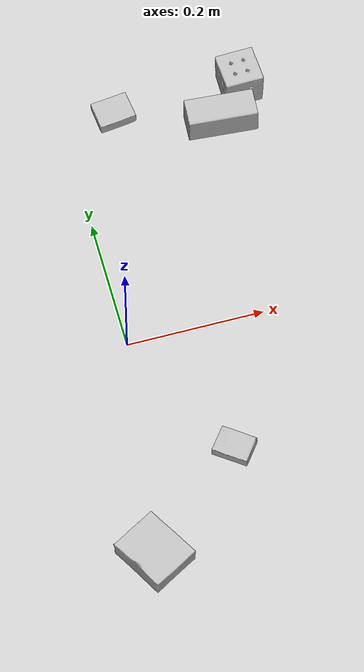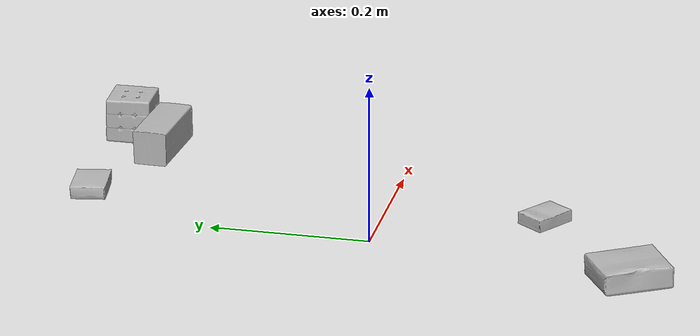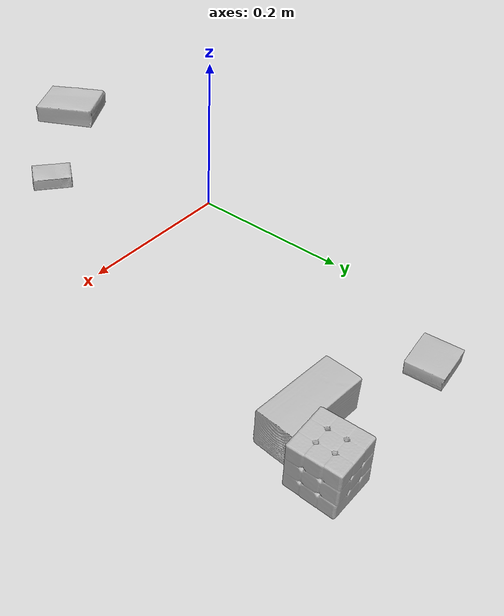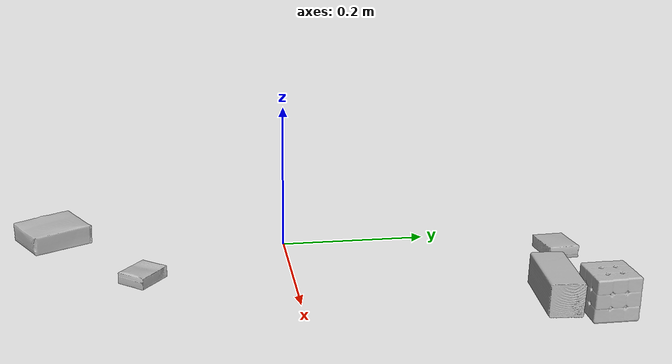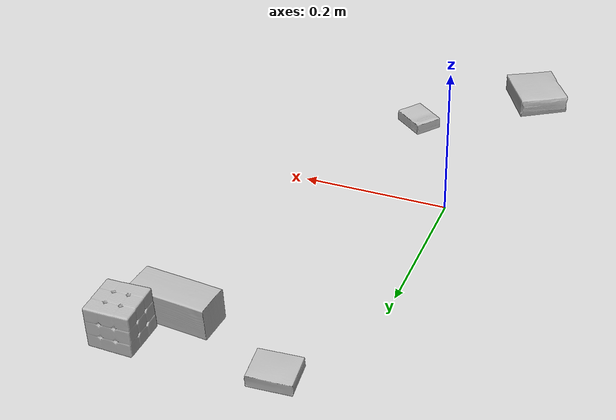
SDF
<sdf version="1.4">
  <world name="default">
    <light name="light1" type="point">
      <pose>0 0 1 0 0 0</pose>
      <diffuse>3 3 3 1</diffuse>
      <specular>3 3 3 1</specular>
    </light>
    <light name="light2" type="point">
      <pose>0 0.5 2 0 0 0</pose>
      <diffuse>1 1 1 1</diffuse>
      <specular>1 1 1 1</specular>
    </light>
    <light name="light3" type="point">
      <pose>0 0.5 2 0 0 0</pose>
      <diffuse>3 3 3 1</diffuse>
      <specular>3 3 3 1</specular>
    </light>
    <scene>
      <ambient>0.7 0.7 0.7</ambient>
    </scene>
    <model name="box1">
      <link name="link_box1">
        <collision name="default">
          <geometry>
            <mesh>
              <uri>model://rubiks_cube/collision_meshes/collision.obj</uri>
              <scale>1.0 1.0 1.0</scale>
            </mesh>
          </geometry>
          <surface>
            <friction>
              <ode>
                <mu>0.5</mu>
                <mu2>0.5</mu2>
              </ode>
            </friction>
          <contact>
        <ode>
            <max_vel>0</max_vel>
            <min_depth>0.0001</min_depth>
            <kp>1e8</kp>
        </ode>
    </contact></surface>
        </collision>
        <visual name="default">
          <geometry>
            <mesh>
              <uri>model://rubiks_cube/visual_meshes/visual.dae</uri>
              <scale>1.0 1.0 1.0</scale>
            </mesh>
          </geometry>
        </visual>
        <inertial>
          <mass>0.16542086005210876</mass>
          <pose>2.6721041649580002e-05 5.256967051536776e-05 -7.264316536748083e-06 -0.054673137900176624 -0.09813866632394339 -0.03445580911338559</pose>
          <inertia>
            <ixx>9.140613e-05</ixx>
            <iyy>9.097988e-05</iyy>
            <izz>9.216359e-05</izz>
            <ixy>0</ixy>
            <ixz>0</ixz>
            <iyz>0</iyz>
          </inertia>
        </inertial>
      </link>
      <pose>0.2689058482646942 0.3712412416934967 0.028679000213742256 -3.760342893995038e-09 7.876118758559304e-08 -1.5408525200218903</pose>
    </model>
    <model name="box2">
      <link name="link_box2">
        <collision name="default">
          <geometry>
            <mesh>
              <uri>model://cracker_box/collision_meshes/collision.obj</uri>
              <scale>0.25 0.25 0.25</scale>
            </mesh>
          </geometry>
          <surface>
            <friction>
              <ode>
                <mu>0.5</mu>
                <mu2>0.5</mu2>
              </ode>
            </friction>
          <contact>
        <ode>
            <max_vel>0</max_vel>
            <min_depth>0.0001</min_depth>
            <kp>1e8</kp>
        </ode>
    </contact></surface>
        </collision>
        <visual name="default">
          <geometry>
            <mesh>
              <uri>model://cracker_box/visual_meshes/visual.dae</uri>
              <scale>0.25 0.25 0.25</scale>
            </mesh>
          </geometry>
        </visual>
        <inertial>
          <mass>0.04381135478615761</mass>
          <pose>0.00023660462466068566 6.358561222441494e-05 -0.0004257383698131889 -0.00031620747829542317 -0.011106489600678707 0.002546794302661479</pose>
          <inertia>
            <ixx>6.9647826e-06</ixx>
            <iyy>1.1500225e-05</iyy>
            <izz>1.6411877e-05</izz>
            <ixy>0</ixy>
            <ixz>0</ixz>
            <iyz>0</iyz>
          </inertia>
        </inertial>
      </link>
      <pose>0.1018977239727974 -0.19721104204654694 0.009120451286435127 -0.01178817853133376 -0.007367023826673816 -0.6507560010748964</pose>
    </model>
    <model name="box3">
      <link name="link_box3">
        <collision name="default">
          <geometry>
            <mesh>
              <uri>model://gelatin_box/collision_meshes/collision.obj</uri>
              <scale>1.0 1.0 1.0</scale>
            </mesh>
          </geometry>
          <surface>
            <friction>
              <ode>
                <mu>0.5</mu>
                <mu2>0.5</mu2>
              </ode>
            </friction>
          <contact>
        <ode>
            <max_vel>0</max_vel>
            <min_depth>0.0001</min_depth>
            <kp>1e8</kp>
        </ode>
    </contact></surface>
        </collision>
        <visual name="default">
          <geometry>
            <mesh>
              <uri>model://gelatin_box/visual_meshes/visual.dae</uri>
              <scale>1.0 1.0 1.0</scale>
            </mesh>
          </geometry>
        </visual>
        <inertial>
          <mass>0.23367169499397278</mass>
          <pose>0.0004319618456065655 0.00011156871914863586 -0.0003640321083366871 -0.0010503719733775277 -0.004755817758083372 0.016440561333906818</pose>
          <inertia>
            <ixx>0.00016495313</ixx>
            <iyy>0.00011782518</iyy>
            <izz>0.00025109548</izz>
            <ixy>0</ixy>
            <ixz>0</ixz>
            <iyz>0</iyz>
          </inertia>
        </inertial>
      </link>
      <pose>-0.047372911125421524 -0.32459792494773865 0.015168312937021255 0.0055974435711659215 -0.007304586931859607 -2.631900767389111</pose>
    </model>
    <model name="box4">
      <link name="link_box4">
        <collision name="default">
          <geometry>
            <mesh>
              <uri>model://wood_block/collision_meshes/collision.obj</uri>
              <scale>0.5 0.5 0.5</scale>
            </mesh>
          </geometry>
          <surface>
            <friction>
              <ode>
                <mu>0.5</mu>
                <mu2>0.5</mu2>
              </ode>
            </friction>
          <contact>
        <ode>
            <max_vel>0</max_vel>
            <min_depth>0.0001</min_depth>
            <kp>1e8</kp>
        </ode>
    </contact></surface>
        </collision>
        <visual name="default">
          <geometry>
            <mesh>
              <uri>model://wood_block/visual_meshes/visual.dae</uri>
              <scale>0.5 0.5 0.5</scale>
            </mesh>
          </geometry>
        </visual>
        <inertial>
          <mass>0.20833587646484375</mass>
          <pose>-2.9066577553749084e-06 -0.000285404734313488 0.00013204291462898254 -0.05220975529367638 -0.0051926946165042134 -0.0068613779519224715</pose>
          <inertia>
            <ixx>6.9696216e-05</ixx>
            <iyy>0.0002201704</iyy>
            <izz>0.00021934687</izz>
            <ixy>0</ixy>
            <ixz>0</ixz>
            <iyz>0</iyz>
          </inertia>
        </inertial>
      </link>
      <pose>0.2267160564661026 0.319949209690094 0.02252749167382717 -0.015845861002674565 -0.0004009043796349208 -0.07046427568791622</pose>
    </model>
    <model name="box5">
      <link name="link_box5">
        <collision name="default">
          <geometry>
            <mesh>
              <uri>model://pudding_box/collision_meshes/collision.obj</uri>
              <scale>0.5 0.5 0.5</scale>
            </mesh>
          </geometry>
          <surface>
            <friction>
              <ode>
                <mu>0.5</mu>
                <mu2>0.5</mu2>
              </ode>
            </friction>
          <contact>
        <ode>
            <max_vel>0</max_vel>
            <min_depth>0.0001</min_depth>
            <kp>1e8</kp>
        </ode>
    </contact></surface>
        </collision>
        <visual name="default">
          <geometry>
            <mesh>
              <uri>model://pudding_box/visual_meshes/visual.dae</uri>
              <scale>0.5 0.5 0.5</scale>
            </mesh>
          </geometry>
        </visual>
        <inertial>
          <mass>0.032720133662223816</mass>
          <pose>0.00024474109522998333 0.0004033942532259971 -0.0002594413817860186 0.005213102275410761 -0.0066037963999523224 0.020079827026921356</pose>
          <inertia>
            <ixx>9.2471055e-06</ixx>
            <iyy>6.221519e-06</iyy>
            <izz>1.3655769e-05</izz>
            <ixy>0</ixy>
            <ixz>0</ixz>
            <iyz>0</iyz>
          </inertia>
        </inertial>
      </link>
      <pose>0.0775064006447792 0.37275463342666626 0.009862900711596012 0.022348529837977783 -0.011391724533657166 -1.4646345978489237</pose>
    </model>
  <physics type="ode">
      <max_contacts>50</max_contacts>
      <ode>
        <solver>
          <type>quick</type>
          <iters>75</iters>
        </solver>
        <constraints>
          <contact_max_correcting_vel>0</contact_max_correcting_vel>
          <contact_surface_layer>0</contact_surface_layer>
        </constraints>
      </ode>
    </physics></world>
</sdf>
